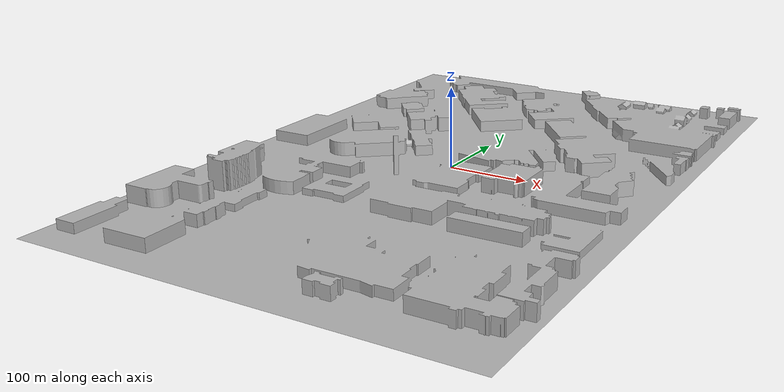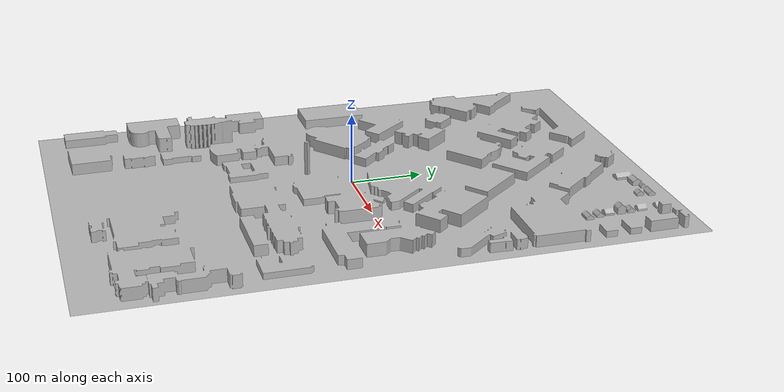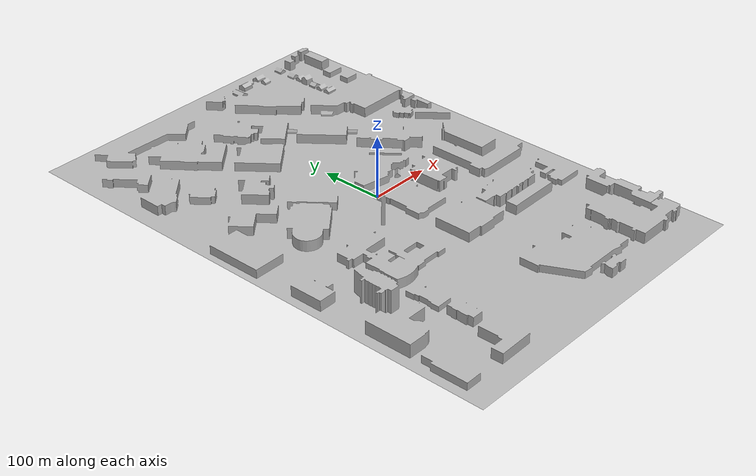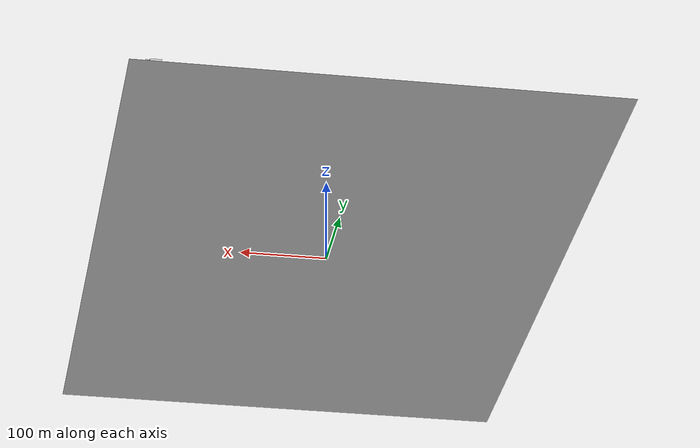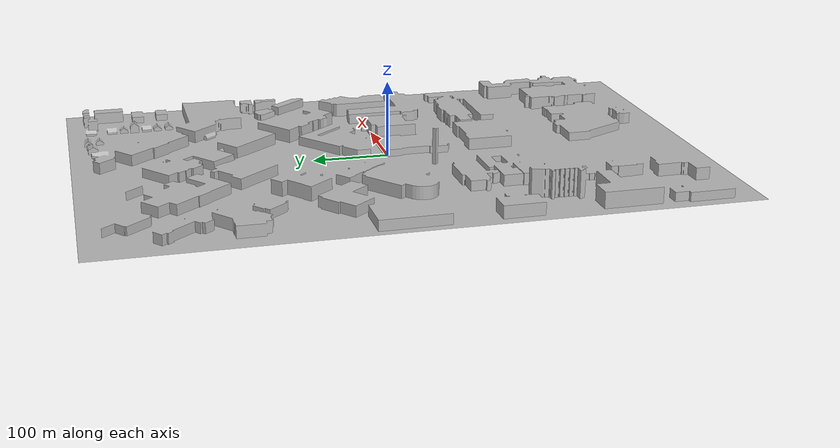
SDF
<?xml version="1.0" encoding="UTF-8"?>
<sdf version='1.9'>
  <model name='purdue'>
    <pose>0 0 0 0 0 0</pose>
    <static>true</static>

    <link name="buildings">
      <visual name="visual">
        <geometry>
          <mesh>
            <uri>model://purdue/media/buildings.dae</uri>
          </mesh>
        </geometry>
        <pose>0 0 -.5 0 0 0</pose>
      </visual>
      <collision name="collision">
        <geometry>
          <mesh>
            <uri>model://purdue/media/buildings.dae</uri>
          </mesh>
        </geometry>
        <pose>0 0 -.5 0 0 0</pose>
      </collision>
    </link>

  </model>
</sdf>
